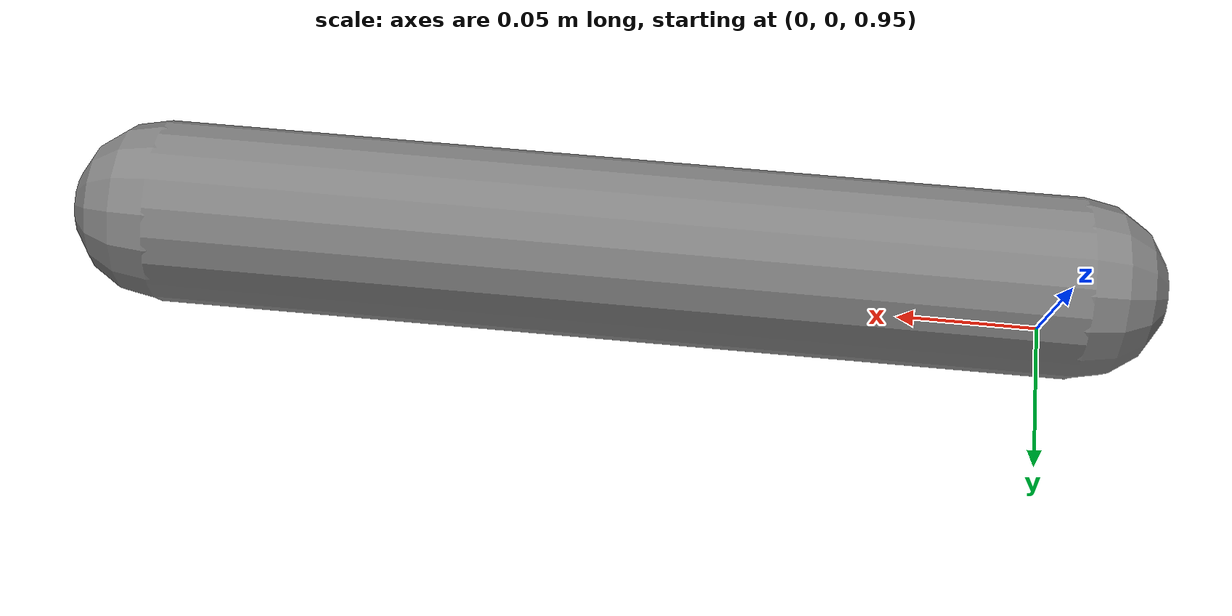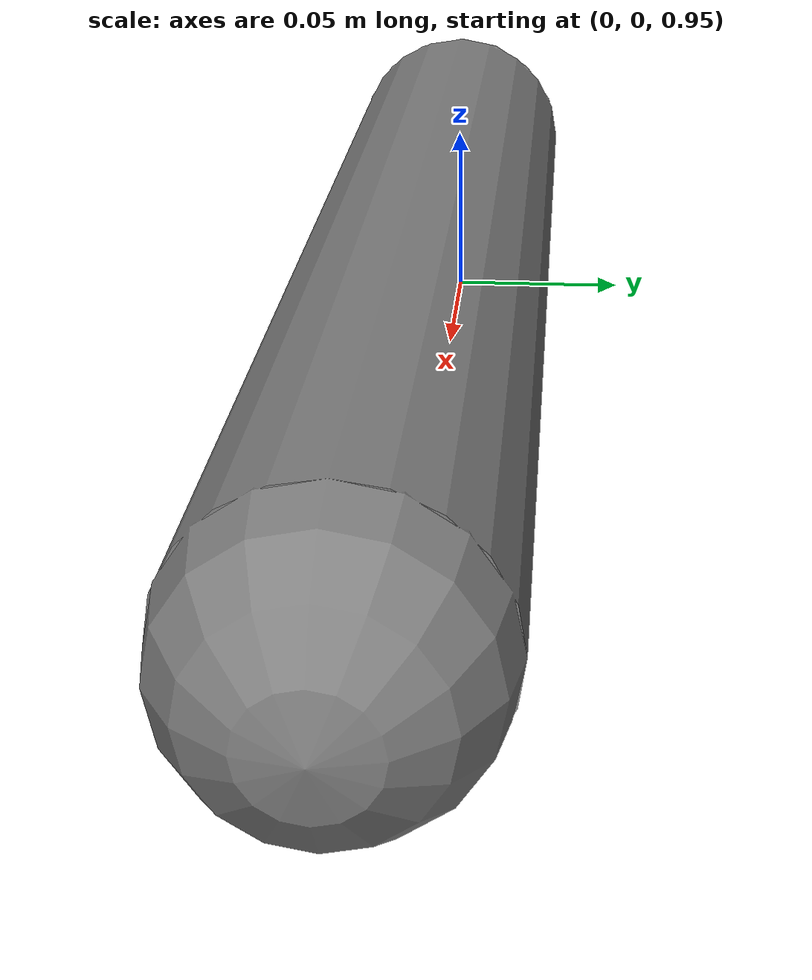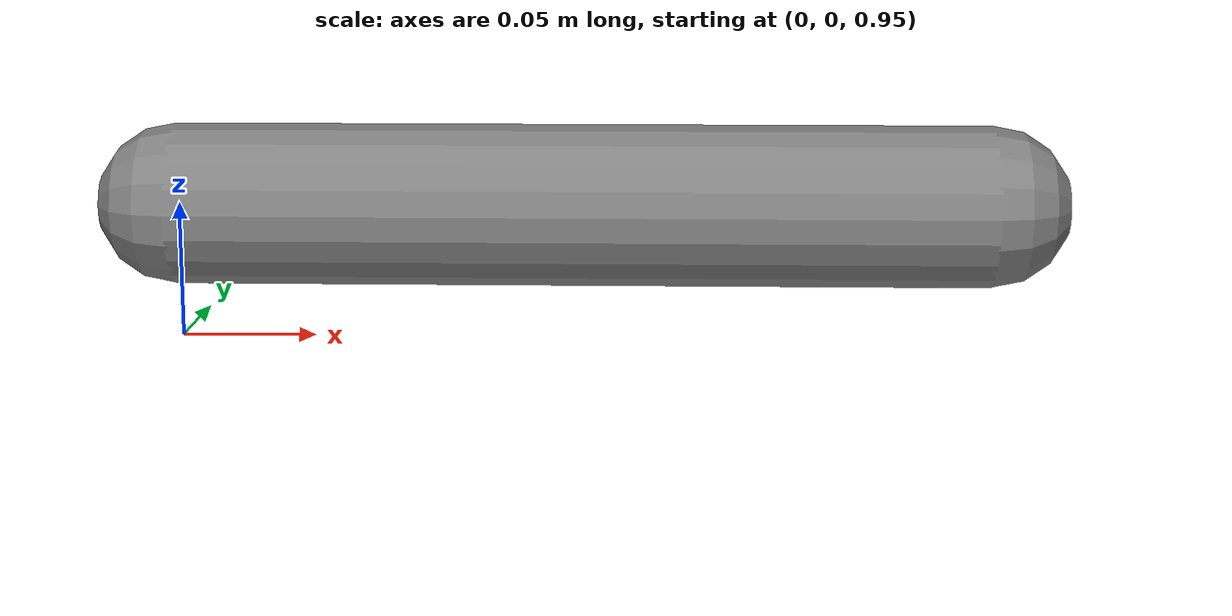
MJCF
<mujoco model="cylinder_bias_upstream">
  <compiler autolimits="true"/>
  <worldbody>
    <geom name="floor" type="plane" size="2 2 0.1"/>
    <body name="arm" pos="0 0 1">
      <joint name="wrist" type="hinge" axis="0 1 0" range="-90 90"/>
      <geom name="arm_g" type="capsule" size="0.03" fromto="0 0 0 0.3 0 0"/>
    </body>
  </worldbody>
  <actuator>
    <cylinder name="a_cyl" joint="wrist" timeconst="0.5" area="0.02" bias="0 -1 0"/>
  </actuator>
</mujoco>
